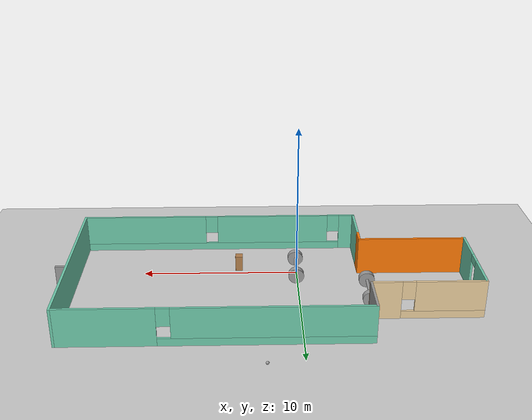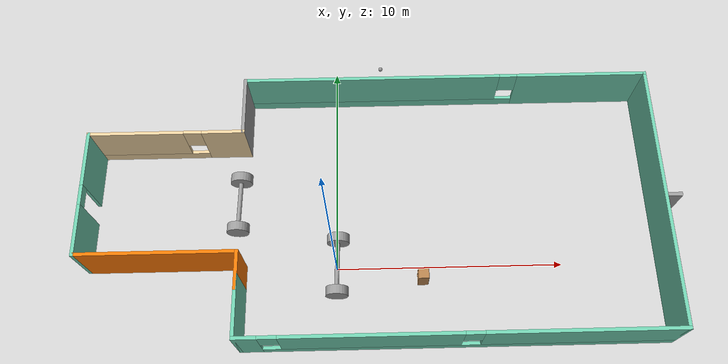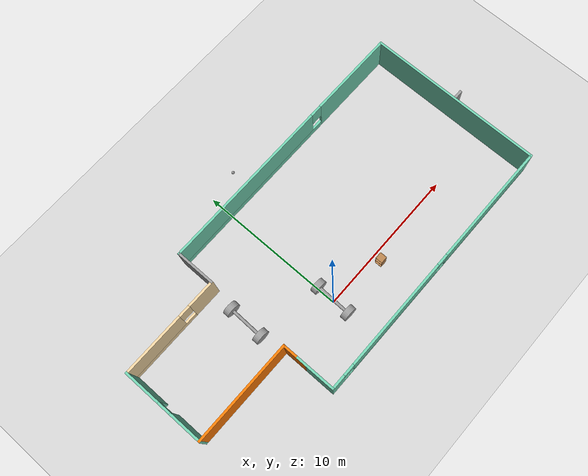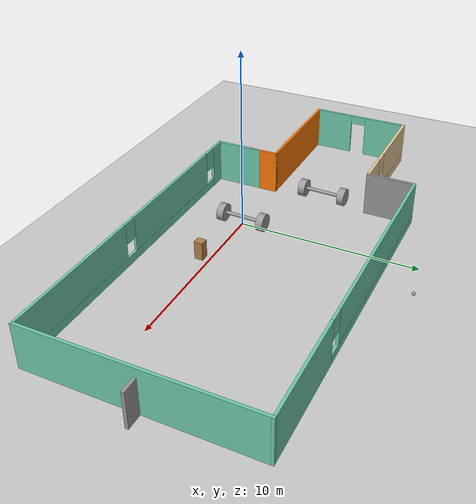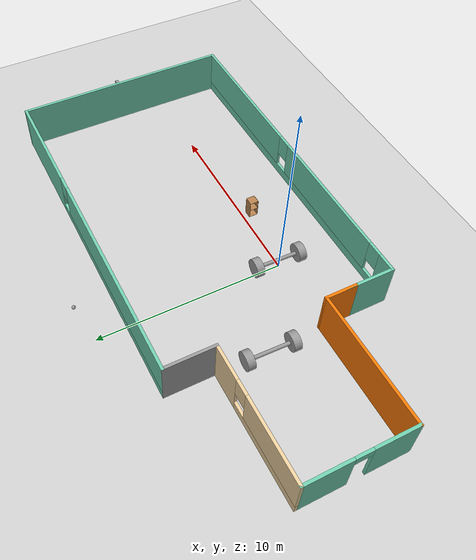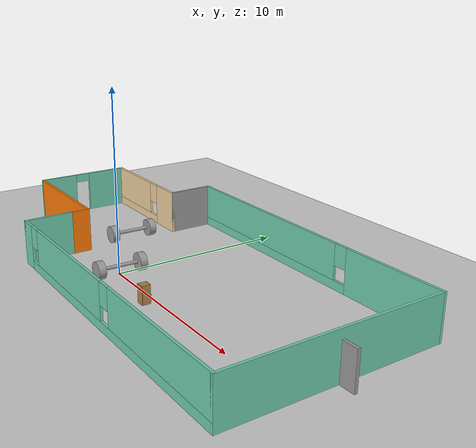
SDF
<sdf version="1.6">
 <world name="default">
  <plugin name="hello" filename="libhello.so"/>
  <light name="sun" type="directional">
   <pose>0 0 10 0 -0 0</pose>
   <diffuse>0.8 0.8 0.8 1</diffuse>
   <specular>0.2 0.2 0.2 1</specular>
   <attenuation>
    <range>1000</range>
    <constant>0.9</constant>
    <linear>0.01</linear>
    <quadratic>0.001</quadratic>
   </attenuation>
   <direction>-0.5 0.1 -0.9</direction>
  </light>
  <model name="ground_plane">
   <static>1</static>
   <link name="link">
    <collision name="collision">
     <geometry><plane><normal>0 0 1</normal><size>100 100</size></plane></geometry>
     <surface>
      <contact><collide_bitmask>65535</collide_bitmask></contact>
      <friction><ode><mu>100</mu><mu2>50</mu2></ode></friction>
     </surface>
    </collision>
    <visual name="visual">
     <cast_shadows>0</cast_shadows>
     <geometry><plane><normal>0 0 1</normal><size>100 100</size></plane></geometry>
     <material>
      <script><uri>file://media/materials/scripts/gazebo.material</uri><name>Gazebo/Grey</name></script>
     </material>
    </visual>
   </link>
  </model>
  <gravity>0 0 -9.8</gravity>
  <magnetic_field>6e-06 2.3e-05 -4.2e-05</magnetic_field>
  <atmosphere type="adiabatic"/>
  <physics name="default_physics" default="0" type="ode">
   <max_step_size>0.001</max_step_size>
   <real_time_factor>1</real_time_factor>
   <real_time_update_rate>1000</real_time_update_rate>
  </physics>
  <scene><ambient>0.4 0.4 0.4 1</ambient><background>0.7 0.7 0.7 1</background><shadows>1</shadows></scene>
  <spherical_coordinates>
   <surface_model>EARTH_WGS84</surface_model>
   <latitude_deg>0</latitude_deg>
   <longitude_deg>0</longitude_deg>
   <elevation>0</elevation>
   <heading_deg>0</heading_deg>
  </spherical_coordinates>
  <model name="myrobot">
   <link name="link_4">
    <pose>-0.013333 -1e-06 0 0 -0 0</pose>
    <inertial>
     <mass>1</mass>
     <inertia><ixx>0.145833</ixx><ixy>0</ixy><ixz>0</ixz><iyy>0.145833</iyy><iyz>0</iyz><izz>0.125</izz></inertia>
    </inertial>
    <visual name="visual">
     <pose>0 0 0.4 1.5708 -0 0</pose>
     <geometry><cylinder><radius>0.1</radius><length>2</length></cylinder></geometry>
     <material>
      <lighting>1</lighting>
      <script><uri>file://media/materials/scripts/gazebo.material</uri><name>Gazebo/Grey</name></script>
      <shader type="pixel"><normal_map>__default__</normal_map></shader>
      <ambient>0.3 0.3 0.3 1</ambient>
      <diffuse>0.7 0.7 0.7 1</diffuse>
      <specular>0.01 0.01 0.01 1</specular>
      <emissive>0 0 0 1</emissive>
     </material>
    </visual>
    <collision name="collision">
     <pose>0 0 0.4 1.5708 -0 0</pose>
     <geometry><cylinder><radius>0.1</radius><length>2</length></cylinder></geometry>
     <surface>
      <friction>
       <ode><mu>1</mu><mu2>1</mu2><fdir1>0 0 0</fdir1><slip1>0</slip1><slip2>0</slip2></ode>
       <torsional>
        <coefficient>1</coefficient>
        <patch_radius>0</patch_radius>
        <surface_radius>0</surface_radius>
        <use_patch_radius>1</use_patch_radius>
        <ode><slip>0</slip></ode>
       </torsional>
      </friction>
      <bounce><restitution_coefficient>0</restitution_coefficient><threshold>1e+06</threshold></bounce>
      <contact>
       <collide_without_contact>0</collide_without_contact>
       <collide_without_contact_bitmask>1</collide_without_contact_bitmask>
       <collide_bitmask>1</collide_bitmask>
       <ode>
        <soft_cfm>0</soft_cfm>
        <soft_erp>0.2</soft_erp>
        <kp>1e+13</kp>
        <kd>1</kd>
        <max_vel>0.01</max_vel>
        <min_depth>0</min_depth>
       </ode>
       <bullet>
        <split_impulse>1</split_impulse>
        <split_impulse_penetration_threshold>-0.01</split_impulse_penetration_threshold>
        <soft_cfm>0</soft_cfm>
        <soft_erp>0.2</soft_erp>
        <kp>1e+13</kp>
        <kd>1</kd>
       </bullet>
      </contact>
     </surface>
    </collision>
   </link>
   <link name="link_4_clone">
    <pose>0.006667 1.2 0 0 -0 0</pose>
    <inertial>
     <mass>1</mass>
     <inertia><ixx>0.145833</ixx><ixy>0</ixy><ixz>0</ixz><iyy>0.145833</iyy><iyz>0</iyz><izz>0.125</izz></inertia>
    </inertial>
    <visual name="visual">
     <pose>0 0 0.4 1.5708 -0 0</pose>
     <geometry><cylinder><radius>0.5</radius><length>0.4</length></cylinder></geometry>
     <material>
      <lighting>1</lighting>
      <script><uri>file://media/materials/scripts/gazebo.material</uri><name>Gazebo/Grey</name></script>
      <shader type="pixel"><normal_map>__default__</normal_map></shader>
      <ambient>0.3 0.3 0.3 1</ambient>
      <diffuse>0.7 0.7 0.7 1</diffuse>
      <specular>0.01 0.01 0.01 1</specular>
      <emissive>0 0 0 1</emissive>
     </material>
    </visual>
    <collision name="collision">
     <pose>0 0 0.4 1.5708 -0 0</pose>
     <geometry><cylinder><radius>0.5</radius><length>0.4</length></cylinder></geometry>
     <surface>
      <friction>
       <ode><mu>1</mu><mu2>1</mu2><fdir1>0 0 0</fdir1><slip1>0</slip1><slip2>0</slip2></ode>
       <torsional>
        <coefficient>1</coefficient>
        <patch_radius>0</patch_radius>
        <surface_radius>0</surface_radius>
        <use_patch_radius>1</use_patch_radius>
        <ode><slip>0</slip></ode>
       </torsional>
      </friction>
      <bounce><restitution_coefficient>0</restitution_coefficient><threshold>1e+06</threshold></bounce>
      <contact>
       <collide_without_contact>0</collide_without_contact>
       <collide_without_contact_bitmask>1</collide_without_contact_bitmask>
       <collide_bitmask>1</collide_bitmask>
       <ode>
        <soft_cfm>0</soft_cfm>
        <soft_erp>0.2</soft_erp>
        <kp>1e+13</kp>
        <kd>1</kd>
        <max_vel>0.01</max_vel>
        <min_depth>0</min_depth>
       </ode>
       <bullet>
        <split_impulse>1</split_impulse>
        <split_impulse_penetration_threshold>-0.01</split_impulse_penetration_threshold>
        <soft_cfm>0</soft_cfm>
        <soft_erp>0.2</soft_erp>
        <kp>1e+13</kp>
        <kd>1</kd>
       </bullet>
      </contact>
     </surface>
    </collision>
   </link>
   <link name="link_4_clone_clone">
    <pose>0.006667 -1.2 0 0 -0 0</pose>
    <inertial>
     <mass>1</mass>
     <inertia><ixx>0.145833</ixx><ixy>0</ixy><ixz>0</ixz><iyy>0.145833</iyy><iyz>0</iyz><izz>0.125</izz></inertia>
    </inertial>
    <visual name="visual">
     <pose>0 0 0.4 1.5708 -0 0</pose>
     <geometry><cylinder><radius>0.5</radius><length>0.4</length></cylinder></geometry>
     <material>
      <lighting>1</lighting>
      <script><uri>file://media/materials/scripts/gazebo.material</uri><name>Gazebo/Grey</name></script>
      <shader type="pixel"><normal_map>__default__</normal_map></shader>
      <ambient>0.3 0.3 0.3 1</ambient>
      <diffuse>0.7 0.7 0.7 1</diffuse>
      <specular>0.01 0.01 0.01 1</specular>
      <emissive>0 0 0 1</emissive>
     </material>
    </visual>
    <collision name="collision">
     <pose>0 0 0.4 1.5708 -0 0</pose>
     <geometry><cylinder><radius>0.5</radius><length>0.4</length></cylinder></geometry>
     <surface>
      <friction>
       <ode><mu>1</mu><mu2>1</mu2><fdir1>0 0 0</fdir1><slip1>0</slip1><slip2>0</slip2></ode>
       <torsional>
        <coefficient>1</coefficient>
        <patch_radius>0</patch_radius>
        <surface_radius>0</surface_radius>
        <use_patch_radius>1</use_patch_radius>
        <ode><slip>0</slip></ode>
       </torsional>
      </friction>
      <bounce><restitution_coefficient>0</restitution_coefficient><threshold>1e+06</threshold></bounce>
      <contact>
       <collide_without_contact>0</collide_without_contact>
       <collide_without_contact_bitmask>1</collide_without_contact_bitmask>
       <collide_bitmask>1</collide_bitmask>
       <ode>
        <soft_cfm>0</soft_cfm>
        <soft_erp>0.2</soft_erp>
        <kp>1e+13</kp>
        <kd>1</kd>
        <max_vel>0.01</max_vel>
        <min_depth>0</min_depth>
       </ode>
       <bullet>
        <split_impulse>1</split_impulse>
        <split_impulse_penetration_threshold>-0.01</split_impulse_penetration_threshold>
        <soft_cfm>0</soft_cfm>
        <soft_erp>0.2</soft_erp>
        <kp>1e+13</kp>
        <kd>1</kd>
       </bullet>
      </contact>
     </surface>
    </collision>
   </link>
   <joint name="link_4_JOINT_0" type="revolute">
    <parent>link_4</parent>
    <child>link_4_clone</child>
    <axis>
     <xyz>1 0 0</xyz>
     <use_parent_model_frame>0</use_parent_model_frame>
     <limit>
      <lower>-1.79769e+308</lower>
      <upper>1.79769e+308</upper>
      <effort>-1</effort>
      <velocity>-1</velocity>
     </limit>
     <dynamics>
      <spring_reference>0</spring_reference>
      <spring_stiffness>0</spring_stiffness>
      <damping>0</damping>
      <friction>0</friction>
     </dynamics>
    </axis>
    <physics>
     <ode><limit><cfm>0</cfm><erp>0.2</erp></limit><suspension><cfm>0</cfm><erp>0.2</erp></suspension></ode>
    </physics>
   </joint>
   <joint name="link_4_JOINT_1" type="revolute">
    <parent>link_4</parent>
    <child>link_4_clone_clone</child>
    <axis>
     <xyz>0 -1 0</xyz>
     <use_parent_model_frame>0</use_parent_model_frame>
     <limit>
      <lower>-1.79769e+308</lower>
      <upper>1.79769e+308</upper>
      <effort>-1</effort>
      <velocity>-1</velocity>
     </limit>
     <dynamics>
      <spring_reference>0</spring_reference>
      <spring_stiffness>0</spring_stiffness>
      <damping>0</damping>
      <friction>0</friction>
     </dynamics>
    </axis>
    <physics>
     <ode><limit><cfm>0</cfm><erp>0.2</erp></limit><suspension><cfm>0</cfm><erp>0.2</erp></suspension></ode>
    </physics>
   </joint>
   <static>0</static>
   <pose>0.05651 0.046945 0.099896 7.3e-05 -0.031091 -0.025221</pose>
  </model>
  <model name="model_0">
   <pose>1.68 2.415 0 0 -0 0</pose>
   <link name="Door_1">
    <collision name="Door_1_Collision">
     <geometry><box><size>0.9 0.17 2</size></box></geometry>
     <pose>0 0 1 0 -0 0</pose>
    </collision>
    <visual name="Door_1_Visual">
     <pose>0 0 1 0 -0 0</pose>
     <geometry><box><size>0.9 0.17 2</size></box></geometry>
     <material>
      <script><uri>file://media/materials/scripts/gazebo.material</uri><name>Gazebo/Grey</name></script>
     </material>
    </visual>
    <pose>13.069 0.073581 0 0 -0 0</pose>
   </link>
   <link name="Wall_0">
    <collision name="Wall_0_Collision">
     <geometry><box><size>2.75 0.15 2.5</size></box></geometry>
     <pose>0 0 1.25 0 -0 0</pose>
    </collision>
    <visual name="Wall_0_Visual">
     <pose>0 0 1.25 0 -0 0</pose>
     <geometry><box><size>2.75 0.15 2.5</size></box></geometry>
     <material>
      <script><uri>file://media/materials/scripts/gazebo.material</uri><name>Gazebo/Grey</name></script>
      <ambient>0.435294 0.796078 0.67451 1</ambient>
     </material>
     <meta><layer>0</layer></meta>
    </visual>
    <pose>-5.75 -4.625 0 0 0 -1.5708</pose>
   </link>
   <link name="Wall_1">
    <pose>3.425 -5.925 0 0 -0 0</pose>
    <visual name="Wall_1_Visual_0">
     <pose>-8.72731 0 1.25 0 -0 0</pose>
     <geometry><box><size>1.04538 0.15 2.5</size></box></geometry>
     <material>
      <script><uri>file://media/materials/scripts/gazebo.material</uri><name>Gazebo/Grey</name></script>
      <ambient>0.435294 0.796078 0.67451 1</ambient>
     </material>
     <meta><layer>0</layer></meta>
    </visual>
    <collision name="Wall_1_Collision_0">
     <geometry><box><size>1.04538 0.15 2.5</size></box></geometry>
     <pose>-8.72731 0 1.25 0 -0 0</pose>
    </collision>
    <visual name="Wall_1_Visual_1">
     <pose>0.52269 0 0.25 0 -0 0</pose>
     <geometry><box><size>17.4546 0.15 0.5</size></box></geometry>
     <material>
      <script><uri>file://media/materials/scripts/gazebo.material</uri><name>Gazebo/Grey</name></script>
      <ambient>0.435294 0.796078 0.67451 1</ambient>
     </material>
     <meta><layer>0</layer></meta>
    </visual>
    <collision name="Wall_1_Collision_1">
     <geometry><box><size>17.4546 0.15 0.5</size></box></geometry>
     <pose>0.52269 0 0.25 0 -0 0</pose>
    </collision>
    <visual name="Wall_1_Visual_2">
     <pose>-3.61835 0 1.5 0 -0 0</pose>
     <geometry><box><size>7.57254 0.15 2</size></box></geometry>
     <material>
      <script><uri>file://media/materials/scripts/gazebo.material</uri><name>Gazebo/Grey</name></script>
      <ambient>0.435294 0.796078 0.67451 1</ambient>
     </material>
     <meta><layer>0</layer></meta>
    </visual>
    <collision name="Wall_1_Collision_2">
     <geometry><box><size>7.57254 0.15 2</size></box></geometry>
     <pose>-3.61835 0 1.5 0 -0 0</pose>
    </collision>
    <visual name="Wall_1_Visual_3">
     <pose>5.10896 0 1.5 0 -0 0</pose>
     <geometry><box><size>8.28208 0.15 2</size></box></geometry>
     <material>
      <script><uri>file://media/materials/scripts/gazebo.material</uri><name>Gazebo/Grey</name></script>
      <ambient>0.435294 0.796078 0.67451 1</ambient>
     </material>
     <meta><layer>0</layer></meta>
    </visual>
    <collision name="Wall_1_Collision_3">
     <geometry><box><size>8.28208 0.15 2</size></box></geometry>
     <pose>5.10896 0 1.5 0 -0 0</pose>
    </collision>
    <visual name="Wall_1_Visual_4">
     <pose>-7.80462 0 1.9 0 -0 0</pose>
     <geometry><box><size>0.8 0.15 1.2</size></box></geometry>
     <material>
      <script><uri>file://media/materials/scripts/gazebo.material</uri><name>Gazebo/Grey</name></script>
      <ambient>0.435294 0.796078 0.67451 1</ambient>
     </material>
     <meta><layer>0</layer></meta>
    </visual>
    <collision name="Wall_1_Collision_4">
     <geometry><box><size>0.8 0.15 1.2</size></box></geometry>
     <pose>-7.80462 0 1.9 0 -0 0</pose>
    </collision>
    <visual name="Wall_1_Visual_5">
     <pose>0.567924 0 1.9 0 -0 0</pose>
     <geometry><box><size>0.8 0.15 1.2</size></box></geometry>
     <material>
      <script><uri>file://media/materials/scripts/gazebo.material</uri><name>Gazebo/Grey</name></script>
      <ambient>0.435294 0.796078 0.67451 1</ambient>
     </material>
     <meta><layer>0</layer></meta>
    </visual>
    <collision name="Wall_1_Collision_5">
     <geometry><box><size>0.8 0.15 1.2</size></box></geometry>
     <pose>0.567924 0 1.9 0 -0 0</pose>
    </collision>
   </link>
   <link name="Wall_2">
    <collision name="Wall_2_Collision">
     <geometry><box><size>12 0.15 2.5</size></box></geometry>
     <pose>0 0 1.25 0 -0 0</pose>
    </collision>
    <visual name="Wall_2_Visual">
     <pose>0 0 1.25 0 -0 0</pose>
     <geometry><box><size>12 0.15 2.5</size></box></geometry>
     <material>
      <script><uri>file://media/materials/scripts/gazebo.material</uri><name>Gazebo/Grey</name></script>
      <ambient>0.435294 0.796078 0.67451 1</ambient>
     </material>
     <meta><layer>0</layer></meta>
    </visual>
    <pose>12.6 0 0 0 -0 1.5708</pose>
   </link>
   <link name="Wall_3">
    <pose>3.425 5.925 0 0 -0 3.14159</pose>
    <visual name="Wall_3_Visual_0">
     <pose>-6.26986 0 1.25 0 -0 0</pose>
     <geometry><box><size>5.96028 0.15 2.5</size></box></geometry>
     <material>
      <script><uri>file://media/materials/scripts/gazebo.material</uri><name>Gazebo/Grey</name></script>
      <ambient>0.435294 0.796078 0.67451 1</ambient>
     </material>
     <meta><layer>0</layer></meta>
    </visual>
    <collision name="Wall_3_Collision_0">
     <geometry><box><size>5.96028 0.15 2.5</size></box></geometry>
     <pose>-6.26986 0 1.25 0 -0 0</pose>
    </collision>
    <visual name="Wall_3_Visual_1">
     <pose>2.98014 0 0.25 0 -0 0</pose>
     <geometry><box><size>12.5397 0.15 0.5</size></box></geometry>
     <material>
      <script><uri>file://media/materials/scripts/gazebo.material</uri><name>Gazebo/Grey</name></script>
      <ambient>0.435294 0.796078 0.67451 1</ambient>
     </material>
     <meta><layer>0</layer></meta>
    </visual>
    <collision name="Wall_3_Collision_1">
     <geometry><box><size>12.5397 0.15 0.5</size></box></geometry>
     <pose>2.98014 0 0.25 0 -0 0</pose>
    </collision>
    <visual name="Wall_3_Visual_2">
     <pose>3.38014 0 1.5 0 -0 0</pose>
     <geometry><box><size>11.7397 0.15 2</size></box></geometry>
     <material>
      <script><uri>file://media/materials/scripts/gazebo.material</uri><name>Gazebo/Grey</name></script>
      <ambient>0.435294 0.796078 0.67451 1</ambient>
     </material>
     <meta><layer>0</layer></meta>
    </visual>
    <collision name="Wall_3_Collision_2">
     <geometry><box><size>11.7397 0.15 2</size></box></geometry>
     <pose>3.38014 0 1.5 0 -0 0</pose>
    </collision>
    <visual name="Wall_3_Visual_3">
     <pose>-2.88972 0 1.9 0 -0 0</pose>
     <geometry><box><size>0.8 0.15 1.2</size></box></geometry>
     <material>
      <script><uri>file://media/materials/scripts/gazebo.material</uri><name>Gazebo/Grey</name></script>
      <ambient>0.435294 0.796078 0.67451 1</ambient>
     </material>
     <meta><layer>0</layer></meta>
    </visual>
    <collision name="Wall_3_Collision_3">
     <geometry><box><size>0.8 0.15 1.2</size></box></geometry>
     <pose>-2.88972 0 1.9 0 -0 0</pose>
    </collision>
   </link>
   <link name="Wall_4">
    <collision name="Wall_4_Collision">
     <geometry><box><size>2.75 0.15 2.5</size></box></geometry>
     <pose>0 0 1.25 0 -0 0</pose>
    </collision>
    <visual name="Wall_4_Visual">
     <pose>0 0 1.25 0 -0 0</pose>
     <geometry><box><size>2.75 0.15 2.5</size></box></geometry>
     <material>
      <script><uri>file://media/materials/scripts/gazebo.material</uri><name>Gazebo/Grey</name></script>
      <ambient>1 1 1 1</ambient>
     </material>
     <meta><layer>0</layer></meta>
    </visual>
    <pose>-5.75 4.625 0 0 0 -1.5708</pose>
   </link>
   <link name="Wall_5">
    <pose>-9.175 3.325 0 0 -0 3.14159</pose>
    <visual name="Wall_5_Visual_0">
     <pose>-2.53598 0 1.25 0 -0 0</pose>
     <geometry><box><size>1.92803 0.15 2.5</size></box></geometry>
     <material>
      <script><uri>file://media/materials/scripts/gazebo.material</uri><name>Gazebo/Grey</name></script>
      <ambient>0.921569 0.807843 0.615686 1</ambient>
     </material>
     <meta><layer>0</layer></meta>
    </visual>
    <collision name="Wall_5_Collision_0">
     <geometry><box><size>1.92803 0.15 2.5</size></box></geometry>
     <pose>-2.53598 0 1.25 0 -0 0</pose>
    </collision>
    <visual name="Wall_5_Visual_1">
     <pose>0.964017 0 0.25 0 -0 0</pose>
     <geometry><box><size>5.07197 0.15 0.5</size></box></geometry>
     <material>
      <script><uri>file://media/materials/scripts/gazebo.material</uri><name>Gazebo/Grey</name></script>
      <ambient>0.921569 0.807843 0.615686 1</ambient>
     </material>
     <meta><layer>0</layer></meta>
    </visual>
    <collision name="Wall_5_Collision_1">
     <geometry><box><size>5.07197 0.15 0.5</size></box></geometry>
     <pose>0.964017 0 0.25 0 -0 0</pose>
    </collision>
    <visual name="Wall_5_Visual_2">
     <pose>1.36402 0 1.5 0 -0 0</pose>
     <geometry><box><size>4.27197 0.15 2</size></box></geometry>
     <material>
      <script><uri>file://media/materials/scripts/gazebo.material</uri><name>Gazebo/Grey</name></script>
      <ambient>0.921569 0.807843 0.615686 1</ambient>
     </material>
     <meta><layer>0</layer></meta>
    </visual>
    <collision name="Wall_5_Collision_2">
     <geometry><box><size>4.27197 0.15 2</size></box></geometry>
     <pose>1.36402 0 1.5 0 -0 0</pose>
    </collision>
    <visual name="Wall_5_Visual_3">
     <pose>-1.17197 0 1.9 0 -0 0</pose>
     <geometry><box><size>0.8 0.15 1.2</size></box></geometry>
     <material>
      <script><uri>file://media/materials/scripts/gazebo.material</uri><name>Gazebo/Grey</name></script>
      <ambient>0.921569 0.807843 0.615686 1</ambient>
     </material>
     <meta><layer>0</layer></meta>
    </visual>
    <collision name="Wall_5_Collision_3">
     <geometry><box><size>0.8 0.15 1.2</size></box></geometry>
     <pose>-1.17197 0 1.9 0 -0 0</pose>
    </collision>
   </link>
   <link name="Wall_6">
    <pose>-12.6 0.525 0 0 0 -1.5708</pose>
    <visual name="Wall_6_Visual_0">
     <pose>-1.61268 0 1.25 0 -0 0</pose>
     <geometry><box><size>2.52463 0.15 2.5</size></box></geometry>
     <material>
      <script><uri>file://media/materials/scripts/gazebo.material</uri><name>Gazebo/Grey</name></script>
      <ambient>0.435294 0.796078 0.67451 1</ambient>
     </material>
     <meta><layer>0</layer></meta>
    </visual>
    <collision name="Wall_6_Collision_0">
     <geometry><box><size>2.52463 0.15 2.5</size></box></geometry>
     <pose>-1.61268 0 1.25 0 -0 0</pose>
    </collision>
    <visual name="Wall_6_Visual_1">
     <pose>1.71232 0 1.25 0 -0 0</pose>
     <geometry><box><size>2.32537 0.15 2.5</size></box></geometry>
     <material>
      <script><uri>file://media/materials/scripts/gazebo.material</uri><name>Gazebo/Grey</name></script>
      <ambient>0.435294 0.796078 0.67451 1</ambient>
     </material>
     <meta><layer>0</layer></meta>
    </visual>
    <collision name="Wall_6_Collision_1">
     <geometry><box><size>2.32537 0.15 2.5</size></box></geometry>
     <pose>1.71232 0 1.25 0 -0 0</pose>
    </collision>
    <visual name="Wall_6_Visual_2">
     <pose>0.099632 0 2.25 0 -0 0</pose>
     <geometry><box><size>0.9 0.15 0.5</size></box></geometry>
     <material>
      <script><uri>file://media/materials/scripts/gazebo.material</uri><name>Gazebo/Grey</name></script>
      <ambient>0.435294 0.796078 0.67451 1</ambient>
     </material>
     <meta><layer>0</layer></meta>
    </visual>
    <collision name="Wall_6_Collision_2">
     <geometry><box><size>0.9 0.15 0.5</size></box></geometry>
     <pose>0.099632 0 2.25 0 -0 0</pose>
    </collision>
   </link>
   <link name="Wall_7">
    <collision name="Wall_7_Collision">
     <geometry><box><size>7 0.15 2.5</size></box></geometry>
     <pose>0 0 1.25 0 -0 0</pose>
    </collision>
    <visual name="Wall_7_Visual">
     <pose>0 0 1.25 0 -0 0</pose>
     <geometry><box><size>7 0.15 2.5</size></box></geometry>
     <material>
      <script><uri>file://media/materials/scripts/gazebo.material</uri><name>Gazebo/Grey</name></script>
      <ambient>0.996078 0.47451 0.0196078 1</ambient>
     </material>
     <meta><layer>0</layer></meta>
    </visual>
    <pose>-9.175 -2.275 0 0 -0 0</pose>
   </link>
   <link name="Wall_8">
    <collision name="Wall_8_Collision">
     <geometry><box><size>1.75 0.15 2.5</size></box></geometry>
     <pose>0 0 1.25 0 -0 0</pose>
    </collision>
    <visual name="Wall_8_Visual">
     <pose>0 0 1.25 0 -0 0</pose>
     <geometry><box><size>1.75 0.15 2.5</size></box></geometry>
     <material>
      <script><uri>file://media/materials/scripts/gazebo.material</uri><name>Gazebo/Grey</name></script>
      <ambient>0.996078 0.47451 0.0196078 1</ambient>
     </material>
     <meta><layer>0</layer></meta>
    </visual>
    <pose>-5.75 -3.075 0 0 0 -1.5708</pose>
   </link>
   <static>1</static>
  </model>
  <model name="myrobot_clone">
   <link name="link_4">
    <pose>-0.013333 -1e-06 0 0 -0 0</pose>
    <inertial>
     <mass>1</mass>
     <inertia><ixx>0.145833</ixx><ixy>0</ixy><ixz>0</ixz><iyy>0.145833</iyy><iyz>0</iyz><izz>0.125</izz></inertia>
    </inertial>
    <visual name="visual">
     <pose>0 0 0.4 1.5708 -0 0</pose>
     <geometry><cylinder><radius>0.1</radius><length>2</length></cylinder></geometry>
     <material>
      <lighting>1</lighting>
      <script><uri>file://media/materials/scripts/gazebo.material</uri><name>Gazebo/Grey</name></script>
      <shader type="pixel"><normal_map>__default__</normal_map></shader>
      <ambient>0.3 0.3 0.3 1</ambient>
      <diffuse>0.7 0.7 0.7 1</diffuse>
      <specular>0.01 0.01 0.01 1</specular>
      <emissive>0 0 0 1</emissive>
     </material>
    </visual>
    <collision name="collision">
     <pose>0 0 0.4 1.5708 -0 0</pose>
     <geometry><cylinder><radius>0.1</radius><length>2</length></cylinder></geometry>
     <surface>
      <friction>
       <ode><mu>1</mu><mu2>1</mu2><fdir1>0 0 0</fdir1><slip1>0</slip1><slip2>0</slip2></ode>
       <torsional>
        <coefficient>1</coefficient>
        <patch_radius>0</patch_radius>
        <surface_radius>0</surface_radius>
        <use_patch_radius>1</use_patch_radius>
        <ode><slip>0</slip></ode>
       </torsional>
      </friction>
      <bounce><restitution_coefficient>0</restitution_coefficient><threshold>1e+06</threshold></bounce>
      <contact>
       <collide_without_contact>0</collide_without_contact>
       <collide_without_contact_bitmask>1</collide_without_contact_bitmask>
       <collide_bitmask>1</collide_bitmask>
       <ode>
        <soft_cfm>0</soft_cfm>
        <soft_erp>0.2</soft_erp>
        <kp>1e+13</kp>
        <kd>1</kd>
        <max_vel>0.01</max_vel>
        <min_depth>0</min_depth>
       </ode>
       <bullet>
        <split_impulse>1</split_impulse>
        <split_impulse_penetration_threshold>-0.01</split_impulse_penetration_threshold>
        <soft_cfm>0</soft_cfm>
        <soft_erp>0.2</soft_erp>
        <kp>1e+13</kp>
        <kd>1</kd>
       </bullet>
      </contact>
     </surface>
    </collision>
   </link>
   <link name="link_4_clone">
    <pose>0.006667 1.2 0 0 -0 0</pose>
    <inertial>
     <mass>1</mass>
     <inertia><ixx>0.145833</ixx><ixy>0</ixy><ixz>0</ixz><iyy>0.145833</iyy><iyz>0</iyz><izz>0.125</izz></inertia>
    </inertial>
    <visual name="visual">
     <pose>0 0 0.4 1.5708 -0 0</pose>
     <geometry><cylinder><radius>0.5</radius><length>0.4</length></cylinder></geometry>
     <material>
      <lighting>1</lighting>
      <script><uri>file://media/materials/scripts/gazebo.material</uri><name>Gazebo/Grey</name></script>
      <shader type="pixel"><normal_map>__default__</normal_map></shader>
      <ambient>0.3 0.3 0.3 1</ambient>
      <diffuse>0.7 0.7 0.7 1</diffuse>
      <specular>0.01 0.01 0.01 1</specular>
      <emissive>0 0 0 1</emissive>
     </material>
    </visual>
    <collision name="collision">
     <pose>0 0 0.4 1.5708 -0 0</pose>
     <geometry><cylinder><radius>0.5</radius><length>0.4</length></cylinder></geometry>
     <surface>
      <friction>
       <ode><mu>1</mu><mu2>1</mu2><fdir1>0 0 0</fdir1><slip1>0</slip1><slip2>0</slip2></ode>
       <torsional>
        <coefficient>1</coefficient>
        <patch_radius>0</patch_radius>
        <surface_radius>0</surface_radius>
        <use_patch_radius>1</use_patch_radius>
        <ode><slip>0</slip></ode>
       </torsional>
      </friction>
      <bounce><restitution_coefficient>0</restitution_coefficient><threshold>1e+06</threshold></bounce>
      <contact>
       <collide_without_contact>0</collide_without_contact>
       <collide_without_contact_bitmask>1</collide_without_contact_bitmask>
       <collide_bitmask>1</collide_bitmask>
       <ode>
        <soft_cfm>0</soft_cfm>
        <soft_erp>0.2</soft_erp>
        <kp>1e+13</kp>
        <kd>1</kd>
        <max_vel>0.01</max_vel>
        <min_depth>0</min_depth>
       </ode>
       <bullet>
        <split_impulse>1</split_impulse>
        <split_impulse_penetration_threshold>-0.01</split_impulse_penetration_threshold>
        <soft_cfm>0</soft_cfm>
        <soft_erp>0.2</soft_erp>
        <kp>1e+13</kp>
        <kd>1</kd>
       </bullet>
      </contact>
     </surface>
    </collision>
   </link>
   <link name="link_4_clone_clone">
    <pose>0.006667 -1.2 0 0 -0 0</pose>
    <inertial>
     <mass>1</mass>
     <inertia><ixx>0.145833</ixx><ixy>0</ixy><ixz>0</ixz><iyy>0.145833</iyy><iyz>0</iyz><izz>0.125</izz></inertia>
    </inertial>
    <visual name="visual">
     <pose>0 0 0.4 1.5708 -0 0</pose>
     <geometry><cylinder><radius>0.5</radius><length>0.4</length></cylinder></geometry>
     <material>
      <lighting>1</lighting>
      <script><uri>file://media/materials/scripts/gazebo.material</uri><name>Gazebo/Grey</name></script>
      <shader type="pixel"><normal_map>__default__</normal_map></shader>
      <ambient>0.3 0.3 0.3 1</ambient>
      <diffuse>0.7 0.7 0.7 1</diffuse>
      <specular>0.01 0.01 0.01 1</specular>
      <emissive>0 0 0 1</emissive>
     </material>
    </visual>
    <collision name="collision">
     <pose>0 0 0.4 1.5708 -0 0</pose>
     <geometry><cylinder><radius>0.5</radius><length>0.4</length></cylinder></geometry>
     <surface>
      <friction>
       <ode><mu>1</mu><mu2>1</mu2><fdir1>0 0 0</fdir1><slip1>0</slip1><slip2>0</slip2></ode>
       <torsional>
        <coefficient>1</coefficient>
        <patch_radius>0</patch_radius>
        <surface_radius>0</surface_radius>
        <use_patch_radius>1</use_patch_radius>
        <ode><slip>0</slip></ode>
       </torsional>
      </friction>
      <bounce><restitution_coefficient>0</restitution_coefficient><threshold>1e+06</threshold></bounce>
      <contact>
       <collide_without_contact>0</collide_without_contact>
       <collide_without_contact_bitmask>1</collide_without_contact_bitmask>
       <collide_bitmask>1</collide_bitmask>
       <ode>
        <soft_cfm>0</soft_cfm>
        <soft_erp>0.2</soft_erp>
        <kp>1e+13</kp>
        <kd>1</kd>
        <max_vel>0.01</max_vel>
        <min_depth>0</min_depth>
       </ode>
       <bullet>
        <split_impulse>1</split_impulse>
        <split_impulse_penetration_threshold>-0.01</split_impulse_penetration_threshold>
        <soft_cfm>0</soft_cfm>
        <soft_erp>0.2</soft_erp>
        <kp>1e+13</kp>
        <kd>1</kd>
       </bullet>
      </contact>
     </surface>
    </collision>
   </link>
   <joint name="link_4_JOINT_0" type="revolute">
    <parent>link_4</parent>
    <child>link_4_clone</child>
    <axis>
     <xyz>1 0 0</xyz>
     <use_parent_model_frame>0</use_parent_model_frame>
     <limit>
      <lower>-1.79769e+308</lower>
      <upper>1.79769e+308</upper>
      <effort>-1</effort>
      <velocity>-1</velocity>
     </limit>
     <dynamics>
      <spring_reference>0</spring_reference>
      <spring_stiffness>0</spring_stiffness>
      <damping>0</damping>
      <friction>0</friction>
     </dynamics>
    </axis>
    <physics>
     <ode><limit><cfm>0</cfm><erp>0.2</erp></limit><suspension><cfm>0</cfm><erp>0.2</erp></suspension></ode>
    </physics>
   </joint>
   <joint name="link_4_JOINT_1" type="revolute">
    <parent>link_4</parent>
    <child>link_4_clone_clone</child>
    <axis>
     <xyz>0 -1 0</xyz>
     <use_parent_model_frame>0</use_parent_model_frame>
     <limit>
      <lower>-1.79769e+308</lower>
      <upper>1.79769e+308</upper>
      <effort>-1</effort>
      <velocity>-1</velocity>
     </limit>
     <dynamics>
      <spring_reference>0</spring_reference>
      <spring_stiffness>0</spring_stiffness>
      <damping>0</damping>
      <friction>0</friction>
     </dynamics>
    </axis>
    <physics>
     <ode><limit><cfm>0</cfm><erp>0.2</erp></limit><suspension><cfm>0</cfm><erp>0.2</erp></suspension></ode>
    </physics>
   </joint>
   <static>0</static>
   <pose>-4.3709 3.0523 0.099897 7.4e-05 -0.03109 -0.023829</pose>
  </model>
  <model name="cabinet">
   <static>1</static>
   <link name="cabinet_bottom_plate">
    <inertial>
     <pose>0 0 -1 0 -0 0</pose>
     <inertia><ixx>2.05</ixx><ixy>0</ixy><ixz>0</ixz><iyy>2.05</iyy><iyz>0</iyz><izz>2.05</izz></inertia>
     <mass>25</mass>
    </inertial>
    <collision name="cabinet_bottom_plate_geom">
     <pose>0 0 0.01 0 -0 0</pose>
     <geometry><box><size>0.45 0.45 0.02</size></box></geometry>
    </collision>
    <visual name="cabinet_bottom_plate_geom_visual">
     <pose>0 0 0.01 0 -0 0</pose>
     <geometry><box><size>0.45 0.45 0.02</size></box></geometry>
     <material>
      <script><uri>file://media/materials/scripts/gazebo.material</uri><name>Gazebo/Wood</name></script>
     </material>
    </visual>
    <collision name="cabinet_bottom_plate_geom_cabinet_back_plate">
     <pose>0.235 0 0.51 0 -0 0</pose>
     <geometry><box><size>0.02 0.45 1.02</size></box></geometry>
    </collision>
    <visual name="cabinet_bottom_plate_geom_cabinet_back_plate_visual">
     <pose>0.235 0 0.51 0 -0 0</pose>
     <geometry><box><size>0.02 0.45 1.02</size></box></geometry>
     <material>
      <script><uri>file://media/materials/scripts/gazebo.material</uri><name>Gazebo/Wood</name></script>
     </material>
    </visual>
    <collision name="cabinet_bottom_plate_geom_cabinet_left_plate">
     <pose>0 0.235 0.51 0 -0 0</pose>
     <geometry><box><size>0.45 0.02 1.02</size></box></geometry>
    </collision>
    <visual name="cabinet_bottom_plate_geom_cabinet_left_plate_visual">
     <pose>0 0.235 0.51 0 -0 0</pose>
     <geometry><box><size>0.45 0.02 1.02</size></box></geometry>
     <material>
      <script><uri>file://media/materials/scripts/gazebo.material</uri><name>Gazebo/Wood</name></script>
     </material>
    </visual>
    <collision name="cabinet_bottom_plate_geom_cabinet_middle_plate">
     <pose>0 0 0.51 0 -0 0</pose>
     <geometry><box><size>0.45 0.45 0.02</size></box></geometry>
    </collision>
    <visual name="cabinet_bottom_plate_geom_cabinet_middle_plate_visual">
     <pose>0 0 0.51 0 -0 0</pose>
     <geometry><box><size>0.45 0.45 0.02</size></box></geometry>
     <material>
      <script><uri>file://media/materials/scripts/gazebo.material</uri><name>Gazebo/Wood</name></script>
     </material>
    </visual>
    <collision name="cabinet_bottom_plate_geom_cabinet_right_plate">
     <pose>0 -0.235 0.51 0 -0 0</pose>
     <geometry><box><size>0.45 0.02 1.02</size></box></geometry>
    </collision>
    <visual name="cabinet_bottom_plate_geom_cabinet_right_plate_visual">
     <pose>0 -0.235 0.51 0 -0 0</pose>
     <geometry><box><size>0.45 0.02 1.02</size></box></geometry>
     <material>
      <script><uri>file://media/materials/scripts/gazebo.material</uri><name>Gazebo/Wood</name></script>
     </material>
    </visual>
    <collision name="cabinet_bottom_plate_geom_cabinet_top_plate">
     <pose>0 0 1.01 0 -0 0</pose>
     <geometry><box><size>0.45 0.45 0.02</size></box></geometry>
    </collision>
    <visual name="cabinet_bottom_plate_geom_cabinet_top_plate_visual">
     <pose>0 0 1.01 0 -0 0</pose>
     <geometry><box><size>0.45 0.45 0.02</size></box></geometry>
     <material>
      <script><uri>file://media/materials/scripts/gazebo.material</uri><name>Gazebo/Wood</name></script>
     </material>
    </visual>
   </link>
   <pose>3.78552 -0.541267 0 0 -0 0</pose>
  </model>
  <model name="my_ball_0">
   <link name="link">
    <pose>0 0 -0.397724 0 -0 0</pose>
    <inertial>
     <mass>1</mass>
     <inertia><ixx>0.1</ixx><ixy>0</ixy><ixz>0</ixz><iyy>0.1</iyy><iyz>0</iyz><izz>0.1</izz></inertia>
    </inertial>
    <visual name="visual">
     <geometry><sphere><radius>0.1</radius></sphere></geometry>
     <material>
      <script><name>Gazebo/Grey</name><uri>file://media/materials/scripts/gazebo.material</uri></script>
      <shader type="pixel"><normal_map>__default__</normal_map></shader>
      <ambient>1 1 1 1</ambient>
      <diffuse>1 1 1 1</diffuse>
      <specular>1 1 1 1</specular>
      <emissive>1 1 1 1</emissive>
     </material>
    </visual>
    <collision name="collision">
     <geometry><sphere><radius>0.1</radius></sphere></geometry>
     <surface>
      <friction>
       <ode><mu>1</mu><mu2>1</mu2><fdir1>0 0 0</fdir1><slip1>0</slip1><slip2>0</slip2></ode>
       <torsional>
        <coefficient>1</coefficient>
        <patch_radius>0</patch_radius>
        <surface_radius>0</surface_radius>
        <use_patch_radius>1</use_patch_radius>
        <ode><slip>0</slip></ode>
       </torsional>
      </friction>
      <bounce><restitution_coefficient>0</restitution_coefficient><threshold>1e+06</threshold></bounce>
      <contact>
       <collide_without_contact>0</collide_without_contact>
       <collide_without_contact_bitmask>1</collide_without_contact_bitmask>
       <collide_bitmask>1</collide_bitmask>
       <ode>
        <soft_cfm>0</soft_cfm>
        <soft_erp>0.2</soft_erp>
        <kp>1e+13</kp>
        <kd>1</kd>
        <max_vel>0.01</max_vel>
        <min_depth>0</min_depth>
       </ode>
       <bullet>
        <split_impulse>1</split_impulse>
        <split_impulse_penetration_threshold>-0.01</split_impulse_penetration_threshold>
        <soft_cfm>0</soft_cfm>
        <soft_erp>0.2</soft_erp>
        <kp>1e+13</kp>
        <kd>1</kd>
       </bullet>
      </contact>
     </surface>
    </collision>
   </link>
   <static>0</static>
   <pose>2.15732 10.2924 0.497724 0 -0 0</pose>
  </model>
 </world>
</sdf>
